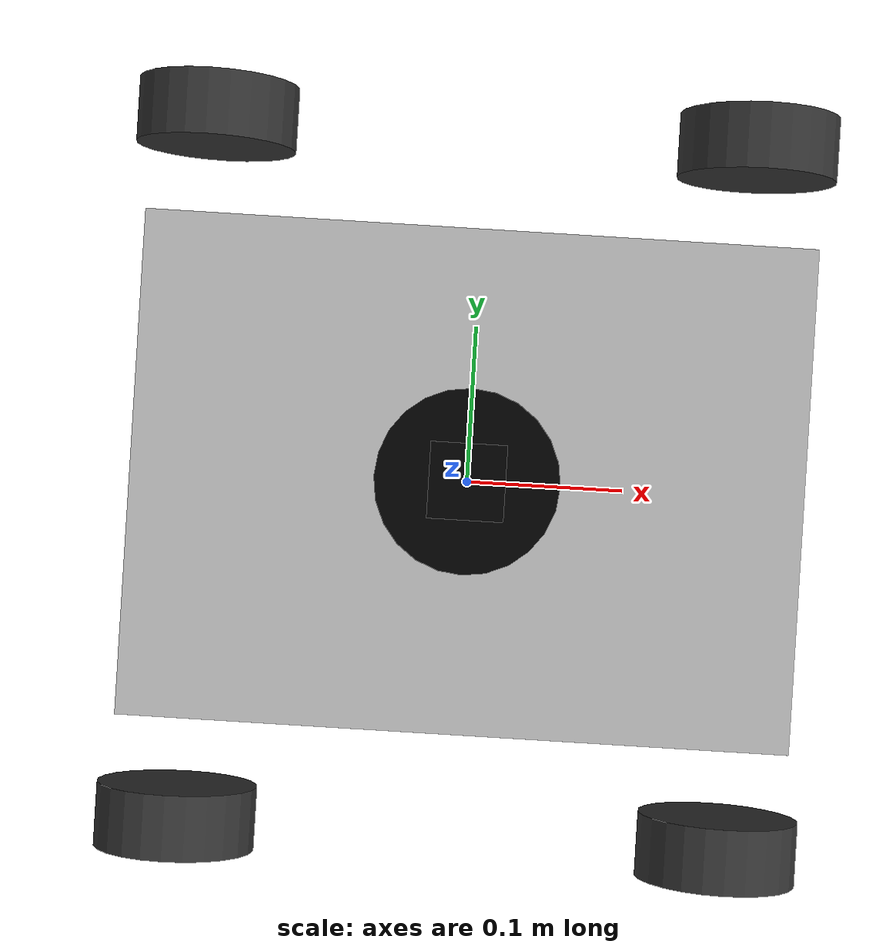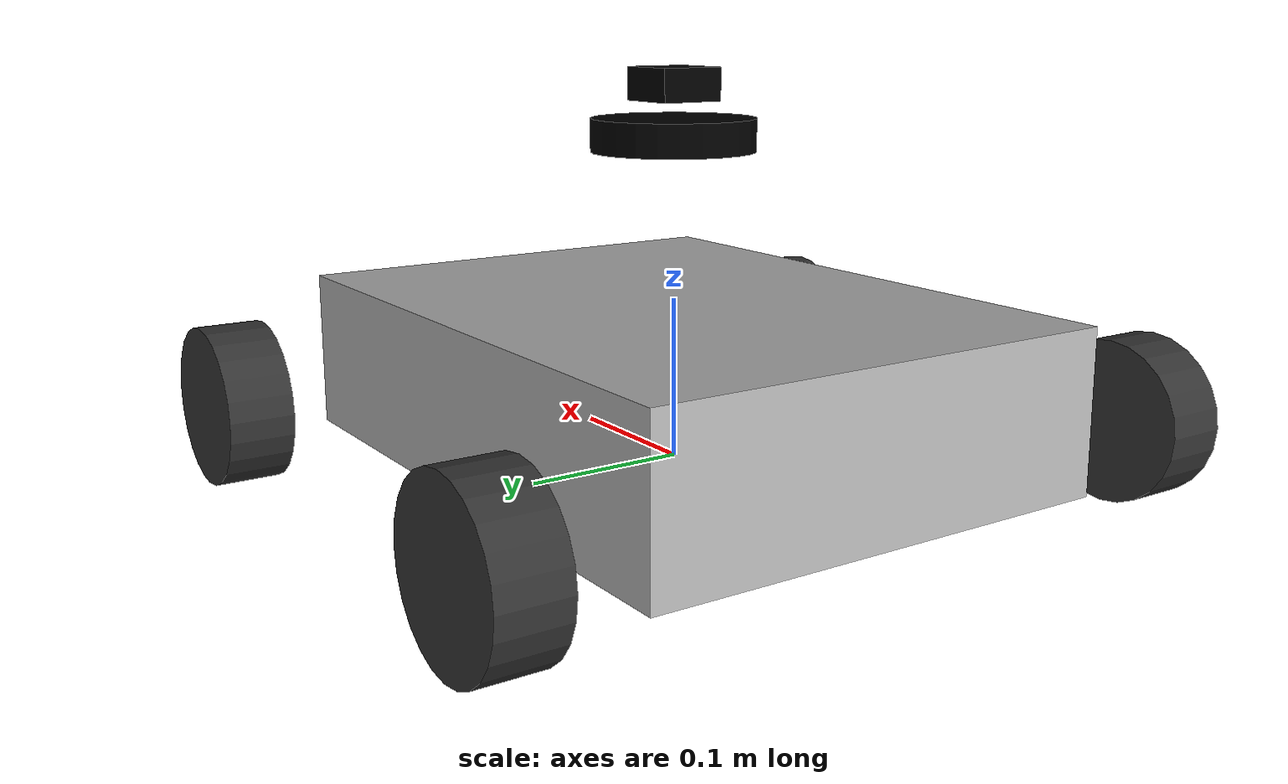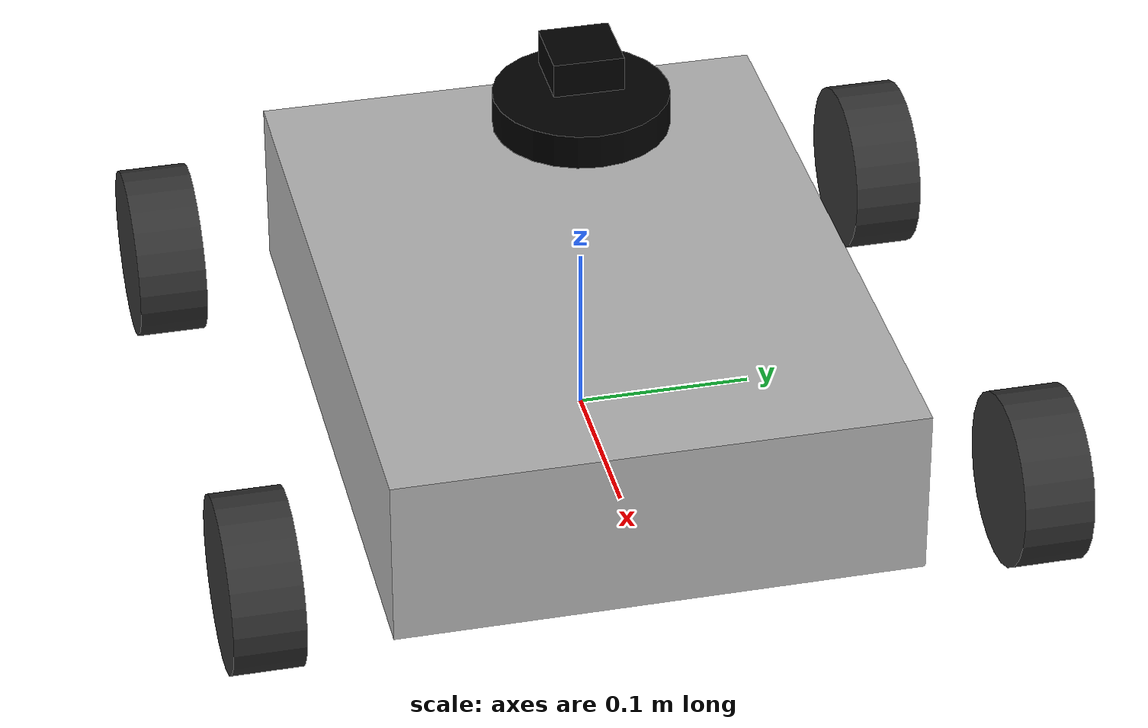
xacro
<?xml version="1.0"?>
<robot xmlns:xacro="http://ros.org/wiki/xacro" name="my_robot">

  <xacro:include filename="$(find my_robot_description)/urdf/inertial_macros.xacro"/>

  <!-- Materials -->
  <material name="silver"><color rgba="0.7 0.7 0.7 1"/></material>
  <material name="dark_gray"><color rgba="0.2 0.2 0.2 1"/></material>
  <material name="black"><color rgba="0 0 0 1"/></material>

  <!-- Base Link -->
  <link name="base_link">
    <visual>
      <origin xyz="0 0 0" rpy="0 0 0"/>
      <geometry>
        <box size="0.01 0.01 0.01"/>
      </geometry>
      <material name="silver"/>
    </visual>
  </link>

  <!-- Chassis -->
  <joint name="chassis_joint" type="fixed">
    <parent link="base_link"/>
    <child link="chassis"/>
    <origin xyz="0 0 0.05"/>
  </joint>

  <link name="chassis">
    <visual>
      <origin xyz="0 0 0" rpy="0 0 0"/>
      <geometry>
        <box size="0.4 0.3 0.1"/>
      </geometry>
      <material name="silver"/>
    </visual>
    <collision>
      <origin xyz="0 0 0"/>
      <geometry>
        <box size="0.4 0.3 0.1"/>
      </geometry>
    </collision>
    <xacro:inertial_box mass="2.0" x="0.4" y="0.3" z="0.1"/>
  </link>

  <!-- Front Left Steering Assembly -->
  <joint name="front_left_steer_joint" type="revolute">
    <parent link="base_link"/>
    <child link="front_left_steer"/>
    <origin xyz="0.17 0.22 0.03" rpy="0 0 0"/>
    <axis xyz="0 0 1"/>
    <limit lower="-0.5236" upper="0.5236" effort="10.0" velocity="1.0"/>
  </joint>

  <link name="front_left_steer">
    <visual>
      <origin xyz="0 0 0" rpy="0 0 0"/>
      <geometry>
        <box size="0.02 0.02 0.02"/>
      </geometry>
      <material name="black"/>
    </visual>
    <collision>
      <origin xyz="0 0 0"/>
      <geometry>
        <box size="0.02 0.02 0.02"/>
      </geometry>
    </collision>
    <xacro:inertial_box mass="0.05" x="0.02" y="0.02" z="0.02"/>
  </link>

  <!-- Front Left Wheel -->
  <joint name="front_left_wheel_joint" type="continuous">
    <parent link="front_left_steer"/>
    <child link="front_left_wheel"/>
    <origin xyz="0 0 0" rpy="0 0 0"/>
    <axis xyz="0 1 0"/>
  </joint>

  <link name="front_left_wheel">
    <visual>
      <origin xyz="0 0 0" rpy="1.5708 0 0"/>
      <geometry>
        <cylinder radius="0.05" length="0.04"/>
      </geometry>
      <material name="dark_gray"/>
    </visual>
    <collision>
      <origin xyz="0 0 0" rpy="1.5708 0 0"/>
      <geometry>
        <cylinder radius="0.05" length="0.04"/>
      </geometry>
    </collision>
    <xacro:inertial_cylinder mass="0.1" length="0.04" radius="0.05"/>
  </link>

  <!-- Front Right Steering Assembly -->
  <joint name="front_right_steer_joint" type="revolute">
    <parent link="base_link"/>
    <child link="front_right_steer"/>
    <origin xyz="0.17 -0.22 0.03" rpy="0 0 0"/>
    <axis xyz="0 0 1"/>
    <limit lower="-0.5236" upper="0.5236" effort="10.0" velocity="1.0"/>
  </joint>

  <link name="front_right_steer">
    <visual>
      <origin xyz="0 0 0" rpy="0 0 0"/>
      <geometry>
        <box size="0.02 0.02 0.02"/>
      </geometry>
      <material name="black"/>
    </visual>
    <collision>
      <origin xyz="0 0 0"/>
      <geometry>
        <box size="0.02 0.02 0.02"/>
      </geometry>
    </collision>
    <xacro:inertial_box mass="0.05" x="0.02" y="0.02" z="0.02"/>
  </link>

  <!-- Front Right Wheel -->
  <joint name="front_right_wheel_joint" type="continuous">
    <parent link="front_right_steer"/>
    <child link="front_right_wheel"/>
    <origin xyz="0 0 0" rpy="0 0 0"/>
    <axis xyz="0 1 0"/>
  </joint>

  <link name="front_right_wheel">
    <visual>
      <origin xyz="0 0 0" rpy="1.5708 0 0"/>
      <geometry>
        <cylinder radius="0.05" length="0.04"/>
      </geometry>
      <material name="dark_gray"/>
    </visual>
    <collision>
      <origin xyz="0 0 0" rpy="1.5708 0 0"/>
      <geometry>
        <cylinder radius="0.05" length="0.04"/>
      </geometry>
    </collision>
    <xacro:inertial_cylinder mass="0.1" length="0.04" radius="0.05"/>
  </link>

  <!-- Rear Left Wheel -->
  <joint name="rear_left_wheel_joint" type="continuous">
    <parent link="base_link"/>
    <child link="rear_left_wheel"/>
    <origin xyz="-0.17 0.22 0.03" rpy="0 0 0"/>
    <axis xyz="0 1 0"/>
  </joint>

  <link name="rear_left_wheel">
    <visual>
      <origin xyz="0 0 0" rpy="1.5708 0 0"/>
      <geometry>
        <cylinder radius="0.05" length="0.04"/>
      </geometry>
      <material name="dark_gray"/>
    </visual>
    <collision>
      <origin xyz="0 0 0" rpy="1.5708 0 0"/>
      <geometry>
        <cylinder radius="0.05" length="0.04"/>
      </geometry>
    </collision>
    <xacro:inertial_cylinder mass="0.1" length="0.04" radius="0.05"/>
  </link>

  <!-- Rear Right Wheel -->
  <joint name="rear_right_wheel_joint" type="continuous">
    <parent link="base_link"/>
    <child link="rear_right_wheel"/>
    <origin xyz="-0.17 -0.22 0.03" rpy="0 0 0"/>
    <axis xyz="0 1 0"/>
  </joint>

  <link name="rear_right_wheel">
    <visual>
      <origin xyz="0 0 0" rpy="1.5708 0 0"/>
      <geometry>
        <cylinder radius="0.05" length="0.04"/>
      </geometry>
      <material name="dark_gray"/>
    </visual>
    <collision>
      <origin xyz="0 0 0" rpy="1.5708 0 0"/>
      <geometry>
        <cylinder radius="0.05" length="0.04"/>
      </geometry>
    </collision>
    <xacro:inertial_cylinder mass="0.1" length="0.04" radius="0.05"/>
  </link>

  <!-- LiDAR Sensor -->
  <joint name="lidar_joint" type="fixed">
    <parent link="chassis"/>
    <child link="lidar"/>
    <origin xyz="0 0 0.15" rpy="0 0 0"/>
  </joint>

  <link name="lidar">
    <visual>
      <origin xyz="0 0 0" rpy="0 0 0"/>
      <geometry>
        <cylinder radius="0.05" length="0.02"/>
      </geometry>
      <material name="black"/>
    </visual>
    <collision>
      <origin xyz="0 0 0"/>
      <geometry>
        <cylinder radius="0.05" length="0.02"/>
      </geometry>
    </collision>
    <xacro:inertial_cylinder mass="0.2" length="0.02" radius="0.05"/>
  </link>

  <gazebo reference="lidar">
    <sensor name="lidar_sensor" type="ray">
      <update_rate>30</update_rate>
      <ray>
        <scan>
          <horizontal>
            <samples>720</samples>
            <resolution>1</resolution>
            <min_angle>-1.5708</min_angle>
            <max_angle>1.5708</max_angle>
          </horizontal>
        </scan>
        <range>
          <min>0.1</min>
          <max>5.0</max>
          <resolution>0.01</resolution>
        </range>
      </ray>
      <plugin name="gazebo_ros_laser_controller" filename="libgazebo_ros_ray_sensor.so"/>
    </sensor>
  </gazebo>

  <!-- Camera -->
  <joint name="camera_joint" type="fixed">
    <parent link="chassis"/>
    <child link="camera"/>
    <origin xyz="0 0 0.18" rpy="0 0 0"/>
  </joint>

  <link name="camera">
    <visual>
      <origin xyz="0 0 0" rpy="0 0 0"/>
      <geometry>
        <box size="0.04 0.04 0.02"/>
      </geometry>
      <material name="black"/>
    </visual>
    <collision>
      <origin xyz="0 0 0"/>
      <geometry>
        <box size="0.04 0.04 0.02"/>
      </geometry>
    </collision>
    <xacro:inertial_box mass="0.1" x="0.04" y="0.04" z="0.02"/>
  </link>

  <gazebo reference="camera">
    <sensor name="camera_sensor" type="camera">
      <update_rate>30</update_rate>
      <camera>
        <horizontal_fov>1.3962634</horizontal_fov>
        <image>
          <width>640</width>
          <height>480</height>
          <format>R8G8B8</format>
        </image>
        <clip>
          <near>0.1</near>
          <far>100</far>
        </clip>
      </camera>
      <plugin name="gazebo_ros_camera_controller" filename="libgazebo_ros_camera.so"/>
    </sensor>
  </gazebo>

  <!-- Differential Drive Plugin -->
  <gazebo>
    <plugin name="diff_drive_controller" filename="libgazebo_ros_diff_drive.so">
      <ros>
        <namespace>/</namespace>
        <remapping>cmd_vel:=/cmd_vel</remapping>
      </ros>

      <left_joint>rear_left_wheel_joint</left_joint>
      <right_joint>rear_right_wheel_joint</right_joint>

      <wheel_separation>0.3</wheel_separation>
      <wheel_diameter>0.1</wheel_diameter>

      <command_topic>/cmd_vel</command_topic>
      <odometry_topic>/odom</odometry_topic>
      <odometry_frame>odom</odometry_frame>
      <robot_base_frame>base_link</robot_base_frame>

      <publish_odom>true</publish_odom>
      <publish_odom_tf>true</publish_odom_tf>

      <!-- Smoothness controls -->
      <update_rate>50.0</update_rate>
      <max_wheel_torque>5.0</max_wheel_torque>
      <max_wheel_acceleration>1.5</max_wheel_acceleration> <!-- helps ramp up/down -->
    </plugin>
  </gazebo>

  <!-- Transmissions for hardware interface -->
  <transmission name="rear_left_wheel_trans">
    <type>transmission_interface/SimpleTransmission</type>
    <joint name="rear_left_wheel_joint">
      <hardwareInterface>hardware_interface/VelocityJointInterface</hardwareInterface>
    </joint>
    <actuator name="motor_rear_left">
      <hardwareInterface>hardware_interface/VelocityJointInterface</hardwareInterface>
      <mechanicalReduction>1</mechanicalReduction>
    </actuator>
  </transmission>

  <transmission name="rear_right_wheel_trans">
    <type>transmission_interface/SimpleTransmission</type>
    <joint name="rear_right_wheel_joint">
      <hardwareInterface>hardware_interface/VelocityJointInterface</hardwareInterface>
    </joint>
    <actuator name="motor_rear_right">
      <hardwareInterface>hardware_interface/VelocityJointInterface</hardwareInterface>
      <mechanicalReduction>1</mechanicalReduction>
    </actuator>
  </transmission>

  <transmission name="front_left_steering_trans">
    <type>transmission_interface/SimpleTransmission</type>
    <joint name="front_left_steer_joint">
      <hardwareInterface>hardware_interface/PositionJointInterface</hardwareInterface>
    </joint>
    <actuator name="steering_motor_left">
      <hardwareInterface>hardware_interface/PositionJointInterface</hardwareInterface>
      <mechanicalReduction>1</mechanicalReduction>
    </actuator>
  </transmission>

  <transmission name="front_right_steering_trans">
    <type>transmission_interface/SimpleTransmission</type>
    <joint name="front_right_steer_joint">
      <hardwareInterface>hardware_interface/PositionJointInterface</hardwareInterface>
    </joint>
    <actuator name="steering_motor_right">
      <hardwareInterface>hardware_interface/PositionJointInterface</hardwareInterface>
      <mechanicalReduction>1</mechanicalReduction>
    </actuator>
  </transmission>

</robot>

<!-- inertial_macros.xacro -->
<robot xmlns:xacro="http://ros.org/wiki/xacro">

  <!-- Box Inertia -->
  <xacro:macro name="inertial_box" params="mass x y z">
    <inertial>
      <origin xyz="0 0 0" rpy="0 0 0"/>
      <mass value="${mass}" />
      <inertia
        ixx="${(1/12.0)*mass*(y*y + z*z)}"
        iyy="${(1/12.0)*mass*(x*x + z*z)}"
        izz="${(1/12.0)*mass*(x*x + y*y)}"
        ixy="0.0" ixz="0.0" iyz="0.0"/>
    </inertial>
  </xacro:macro>

  <!-- Cylinder Inertia -->
  <xacro:macro name="inertial_cylinder" params="mass radius length">
    <inertial>
      <origin xyz="0 0 0" rpy="0 0 0"/>
      <mass value="${mass}" />
      <inertia
        ixx="${(1/12.0)*mass*(3*radius*radius + length*length)}"
        iyy="${(1/12.0)*mass*(3*radius*radius + length*length)}"
        izz="${0.5*mass*radius*radius}"
        ixy="0.0" ixz="0.0" iyz="0.0"/>
    </inertial>
  </xacro:macro>

  <!-- Sphere Inertia -->
  <xacro:macro name="inertial_sphere" params="mass radius">
    <inertial>
      <origin xyz="0 0 0" rpy="0 0 0"/>
      <mass value="${mass}" />
      <inertia
        ixx="${(2/5.0)*mass*radius*radius}"
        iyy="${(2/5.0)*mass*radius*radius}"
        izz="${(2/5.0)*mass*radius*radius}"
        ixy="0.0" ixz="0.0" iyz="0.0"/>
    </inertial>
  </xacro:macro>

    <!-- LiDAR Sensor Macro -->
  <xacro:macro name="lidar_sensor" params="parent_link lidar_name x y z roll pitch yaw">
    <link name="${lidar_name}_link">
      <visual>
        <geometry>
          <cylinder length="0.05" radius="0.04"/>
        </geometry>
        <material name="Grey"/>
      </visual>
      <collision>
        <geometry>
          <cylinder length="0.05" radius="0.04"/>
        </geometry>
      </collision>
      <xacro:inertial_cylinder mass="0.5" radius="0.04" length="0.05"/>
    </link>

    <joint name="${lidar_name}_joint" type="fixed">
      <parent link="${parent_link}"/>
      <child link="${lidar_name}_link"/>
      <origin xyz="${x} ${y} ${z}" rpy="${roll} ${pitch} ${yaw}"/>
    </joint>

    <gazebo reference="${lidar_name}_link">
      <sensor name="${lidar_name}_sensor" type="ray">
        <pose>0 0 0 0 0 0</pose>
        <update_rate>30.0</update_rate>
        <ray>
          <scan>
            <horizontal>
              <samples>720</samples>
              <resolution>1</resolution>
              <min_angle>-1.5708</min_angle>
              <max_angle>1.5708</max_angle>
            </horizontal>
          </scan>
          <range>
            <min>0.12</min>
            <max>3.5</max>
            <resolution>0.01</resolution>
          </range>
        </ray>
        <plugin name="gazebo_ros_laser_controller" filename="libgazebo_ros_ray_sensor.so">
          <ros>
            <remapping>scan:=/scan</remapping>
          </ros>
        </plugin>
      </sensor>
    </gazebo>
  </xacro:macro>

  <!-- Camera Sensor Macro -->
  <xacro:macro name="camera_sensor" params="parent_link camera_name x y z roll pitch yaw">
    <link name="${camera_name}_link">
      <visual>
        <geometry>
          <box size="0.05 0.05 0.05"/>
        </geometry>
        <material name="Black"/>
      </visual>
      <collision>
        <geometry>
          <box size="0.05 0.05 0.05"/>
        </geometry>
      </collision>
      <xacro:inertial_box mass="0.3" x="0.05" y="0.05" z="0.05"/>
    </link>

    <joint name="${camera_name}_joint" type="fixed">
      <parent link="${parent_link}"/>
      <child link="${camera_name}_link"/>
      <origin xyz="${x} ${y} ${z}" rpy="${roll} ${pitch} ${yaw}"/>
    </joint>

    <gazebo reference="${camera_name}_link">
      <sensor name="${camera_name}_sensor" type="camera">
        <pose>0 0 0 0 0 0</pose>
        <update_rate>30</update_rate>
        <camera>
          <horizontal_fov>1.3962634</horizontal_fov>
          <image>
            <width>640</width>
            <height>480</height>
            <format>R8G8B8</format>
          </image>
          <clip>
            <near>0.1</near>
            <far>100</far>
          </clip>
        </camera>
        <plugin name="gazebo_ros_camera_controller" filename="libgazebo_ros_camera.so">
          <ros>
            <remapping>image_raw:=/camera/image_raw</remapping>
          </ros>
        </plugin>
      </sensor>
    </gazebo>
  </xacro:macro>

</robot>
